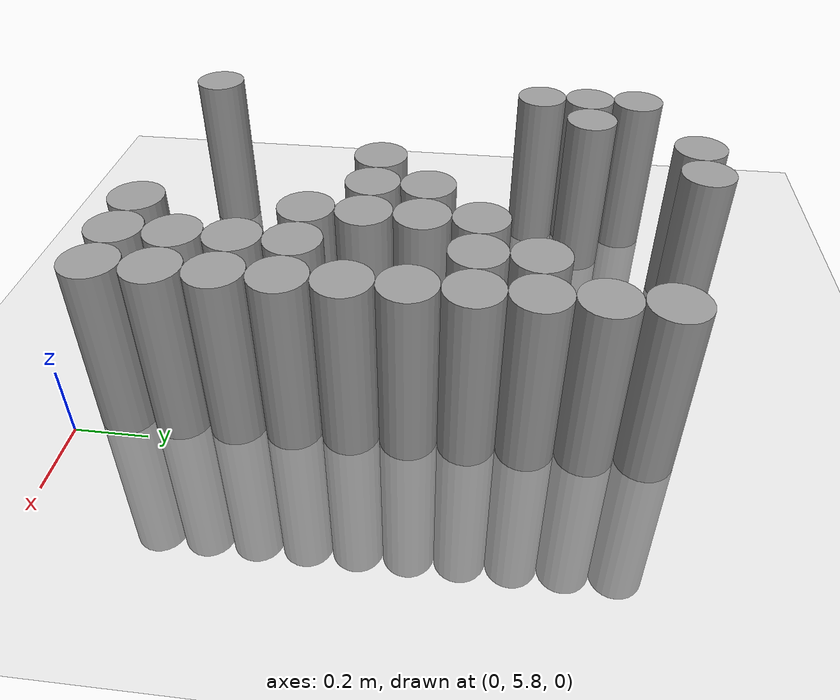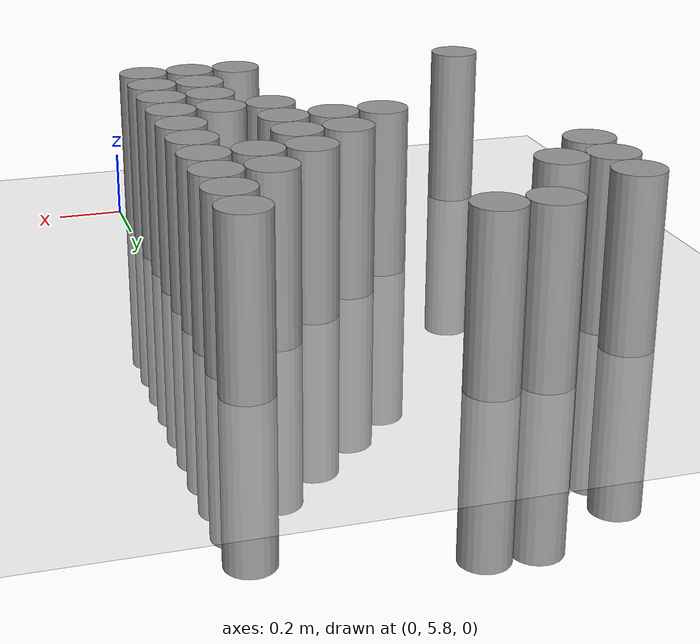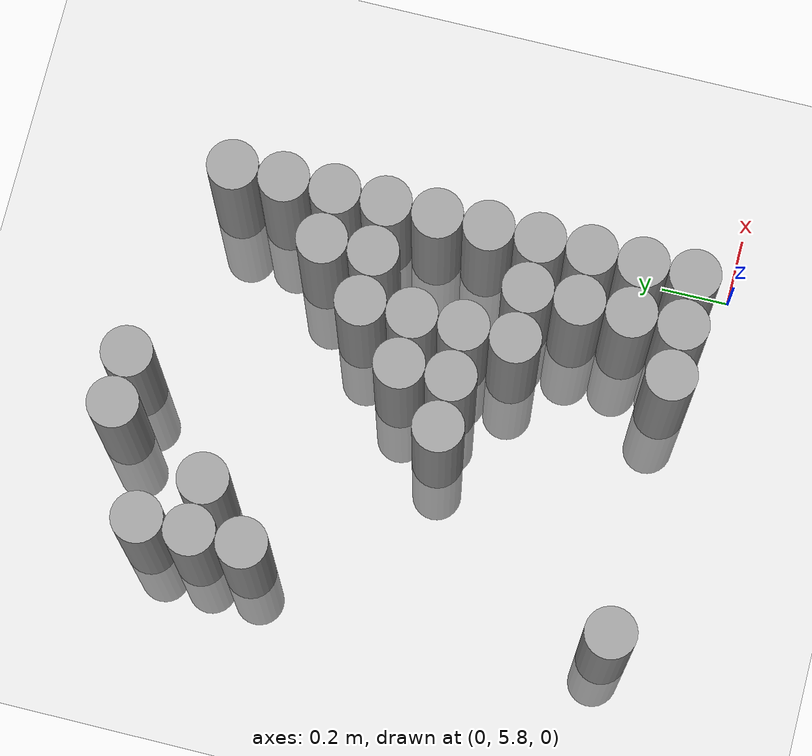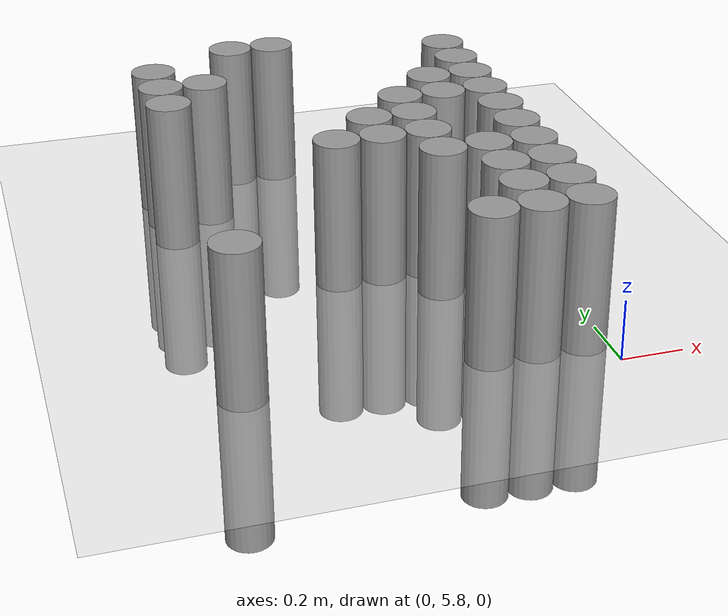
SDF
<sdf version="1.6">
 <world name="default">
  <model name="ground_plane">
   <static>1</static>
   <static>1</static>
   <link name="link">
    <collision name="collision">
     <geometry><plane><normal>0 0 1</normal><size>100 100</size></plane></geometry>
     <surface><friction><ode><mu>100</mu><mu2>50</mu2></ode></friction></surface>
    </collision>
    <visual name="visual">
     <cast_shadows>0</cast_shadows>
     <geometry><plane><normal>0 0 1</normal><size>100 100</size></plane></geometry>
     <material>
      <script><uri>file://media/materials/scripts/gazebo.material</uri><name>Gazebo/Grey</name></script>
     </material>
    </visual>
   </link>
  </model>
  <model name="unit_cylinder_176">
   <static>1</static>
   <pose>-1.125000 5.925000 0.000000 0.000000 0.000000 0.000000</pose>
   <link name="link">
    <inertial>
     <mass>1</mass>
     <inertia><ixx>0.145833</ixx><ixy>0</ixy><ixz>0</ixz><iyy>0.145833</iyy><iyz>0</iyz><izz>0.125</izz></inertia>
    </inertial>
    <collision name="collision">
     <geometry><cylinder><radius>0.075000</radius><length>1</length></cylinder></geometry>
    </collision>
    <visual name="visual">
     <geometry><cylinder><radius>0.075000</radius><length>1</length></cylinder></geometry>
     <material>
      <script><name>Gazebo/Grey</name><uri>file://media/materials/scripts/gazebo.material</uri></script>
     </material>
    </visual>
   </link>
  </model>
  <model name="unit_cylinder_177">
   <static>1</static>
   <pose>-1.125000 6.975000 0.000000 0.000000 0.000000 0.000000</pose>
   <link name="link">
    <inertial>
     <mass>1</mass>
     <inertia><ixx>0.145833</ixx><ixy>0</ixy><ixz>0</ixz><iyy>0.145833</iyy><iyz>0</iyz><izz>0.125</izz></inertia>
    </inertial>
    <collision name="collision">
     <geometry><cylinder><radius>0.075000</radius><length>1</length></cylinder></geometry>
    </collision>
    <visual name="visual">
     <geometry><cylinder><radius>0.075000</radius><length>1</length></cylinder></geometry>
     <material>
      <script><name>Gazebo/Grey</name><uri>file://media/materials/scripts/gazebo.material</uri></script>
     </material>
    </visual>
   </link>
  </model>
  <model name="unit_cylinder_178">
   <static>1</static>
   <pose>-1.125000 7.125000 0.000000 0.000000 0.000000 0.000000</pose>
   <link name="link">
    <inertial>
     <mass>1</mass>
     <inertia><ixx>0.145833</ixx><ixy>0</ixy><ixz>0</ixz><iyy>0.145833</iyy><iyz>0</iyz><izz>0.125</izz></inertia>
    </inertial>
    <collision name="collision">
     <geometry><cylinder><radius>0.075000</radius><length>1</length></cylinder></geometry>
    </collision>
    <visual name="visual">
     <geometry><cylinder><radius>0.075000</radius><length>1</length></cylinder></geometry>
     <material>
      <script><name>Gazebo/Grey</name><uri>file://media/materials/scripts/gazebo.material</uri></script>
     </material>
    </visual>
   </link>
  </model>
  <model name="unit_cylinder_179">
   <static>1</static>
   <pose>-1.125000 7.275000 0.000000 0.000000 0.000000 0.000000</pose>
   <link name="link">
    <inertial>
     <mass>1</mass>
     <inertia><ixx>0.145833</ixx><ixy>0</ixy><ixz>0</ixz><iyy>0.145833</iyy><iyz>0</iyz><izz>0.125</izz></inertia>
    </inertial>
    <collision name="collision">
     <geometry><cylinder><radius>0.075000</radius><length>1</length></cylinder></geometry>
    </collision>
    <visual name="visual">
     <geometry><cylinder><radius>0.075000</radius><length>1</length></cylinder></geometry>
     <material>
      <script><name>Gazebo/Grey</name><uri>file://media/materials/scripts/gazebo.material</uri></script>
     </material>
    </visual>
   </link>
  </model>
  <model name="unit_cylinder_182">
   <static>1</static>
   <pose>-0.975000 7.125000 0.000000 0.000000 0.000000 0.000000</pose>
   <link name="link">
    <inertial>
     <mass>1</mass>
     <inertia><ixx>0.145833</ixx><ixy>0</ixy><ixz>0</ixz><iyy>0.145833</iyy><iyz>0</iyz><izz>0.125</izz></inertia>
    </inertial>
    <collision name="collision">
     <geometry><cylinder><radius>0.075000</radius><length>1</length></cylinder></geometry>
    </collision>
    <visual name="visual">
     <geometry><cylinder><radius>0.075000</radius><length>1</length></cylinder></geometry>
     <material>
      <script><name>Gazebo/Grey</name><uri>file://media/materials/scripts/gazebo.material</uri></script>
     </material>
    </visual>
   </link>
  </model>
  <model name="unit_cylinder_187">
   <static>1</static>
   <pose>-0.825000 7.425000 0.000000 0.000000 0.000000 0.000000</pose>
   <link name="link">
    <inertial>
     <mass>1</mass>
     <inertia><ixx>0.145833</ixx><ixy>0</ixy><ixz>0</ixz><iyy>0.145833</iyy><iyz>0</iyz><izz>0.125</izz></inertia>
    </inertial>
    <collision name="collision">
     <geometry><cylinder><radius>0.075000</radius><length>1</length></cylinder></geometry>
    </collision>
    <visual name="visual">
     <geometry><cylinder><radius>0.075000</radius><length>1</length></cylinder></geometry>
     <material>
      <script><name>Gazebo/Grey</name><uri>file://media/materials/scripts/gazebo.material</uri></script>
     </material>
    </visual>
   </link>
  </model>
  <model name="unit_cylinder_192">
   <static>1</static>
   <pose>-0.675000 6.525000 0.000000 0.000000 0.000000 0.000000</pose>
   <link name="link">
    <inertial>
     <mass>1</mass>
     <inertia><ixx>0.145833</ixx><ixy>0</ixy><ixz>0</ixz><iyy>0.145833</iyy><iyz>0</iyz><izz>0.125</izz></inertia>
    </inertial>
    <collision name="collision">
     <geometry><cylinder><radius>0.075000</radius><length>1</length></cylinder></geometry>
    </collision>
    <visual name="visual">
     <geometry><cylinder><radius>0.075000</radius><length>1</length></cylinder></geometry>
     <material>
      <script><name>Gazebo/Grey</name><uri>file://media/materials/scripts/gazebo.material</uri></script>
     </material>
    </visual>
   </link>
  </model>
  <model name="unit_cylinder_193">
   <static>1</static>
   <pose>-0.675000 7.425000 0.000000 0.000000 0.000000 0.000000</pose>
   <link name="link">
    <inertial>
     <mass>1</mass>
     <inertia><ixx>0.145833</ixx><ixy>0</ixy><ixz>0</ixz><iyy>0.145833</iyy><iyz>0</iyz><izz>0.125</izz></inertia>
    </inertial>
    <collision name="collision">
     <geometry><cylinder><radius>0.075000</radius><length>1</length></cylinder></geometry>
    </collision>
    <visual name="visual">
     <geometry><cylinder><radius>0.075000</radius><length>1</length></cylinder></geometry>
     <material>
      <script><name>Gazebo/Grey</name><uri>file://media/materials/scripts/gazebo.material</uri></script>
     </material>
    </visual>
   </link>
  </model>
  <model name="unit_cylinder_198">
   <static>1</static>
   <pose>-0.525000 6.525000 0.000000 0.000000 0.000000 0.000000</pose>
   <link name="link">
    <inertial>
     <mass>1</mass>
     <inertia><ixx>0.145833</ixx><ixy>0</ixy><ixz>0</ixz><iyy>0.145833</iyy><iyz>0</iyz><izz>0.125</izz></inertia>
    </inertial>
    <collision name="collision">
     <geometry><cylinder><radius>0.075000</radius><length>1</length></cylinder></geometry>
    </collision>
    <visual name="visual">
     <geometry><cylinder><radius>0.075000</radius><length>1</length></cylinder></geometry>
     <material>
      <script><name>Gazebo/Grey</name><uri>file://media/materials/scripts/gazebo.material</uri></script>
     </material>
    </visual>
   </link>
  </model>
  <model name="unit_cylinder_199">
   <static>1</static>
   <pose>-0.525000 6.675000 0.000000 0.000000 0.000000 0.000000</pose>
   <link name="link">
    <inertial>
     <mass>1</mass>
     <inertia><ixx>0.145833</ixx><ixy>0</ixy><ixz>0</ixz><iyy>0.145833</iyy><iyz>0</iyz><izz>0.125</izz></inertia>
    </inertial>
    <collision name="collision">
     <geometry><cylinder><radius>0.075000</radius><length>1</length></cylinder></geometry>
    </collision>
    <visual name="visual">
     <geometry><cylinder><radius>0.075000</radius><length>1</length></cylinder></geometry>
     <material>
      <script><name>Gazebo/Grey</name><uri>file://media/materials/scripts/gazebo.material</uri></script>
     </material>
    </visual>
   </link>
  </model>
  <model name="unit_cylinder_204">
   <static>1</static>
   <pose>-0.375000 5.925000 0.000000 0.000000 0.000000 0.000000</pose>
   <link name="link">
    <inertial>
     <mass>1</mass>
     <inertia><ixx>0.145833</ixx><ixy>0</ixy><ixz>0</ixz><iyy>0.145833</iyy><iyz>0</iyz><izz>0.125</izz></inertia>
    </inertial>
    <collision name="collision">
     <geometry><cylinder><radius>0.075000</radius><length>1</length></cylinder></geometry>
    </collision>
    <visual name="visual">
     <geometry><cylinder><radius>0.075000</radius><length>1</length></cylinder></geometry>
     <material>
      <script><name>Gazebo/Grey</name><uri>file://media/materials/scripts/gazebo.material</uri></script>
     </material>
    </visual>
   </link>
  </model>
  <model name="unit_cylinder_205">
   <static>1</static>
   <pose>-0.375000 6.375000 0.000000 0.000000 0.000000 0.000000</pose>
   <link name="link">
    <inertial>
     <mass>1</mass>
     <inertia><ixx>0.145833</ixx><ixy>0</ixy><ixz>0</ixz><iyy>0.145833</iyy><iyz>0</iyz><izz>0.125</izz></inertia>
    </inertial>
    <collision name="collision">
     <geometry><cylinder><radius>0.075000</radius><length>1</length></cylinder></geometry>
    </collision>
    <visual name="visual">
     <geometry><cylinder><radius>0.075000</radius><length>1</length></cylinder></geometry>
     <material>
      <script><name>Gazebo/Grey</name><uri>file://media/materials/scripts/gazebo.material</uri></script>
     </material>
    </visual>
   </link>
  </model>
  <model name="unit_cylinder_206">
   <static>1</static>
   <pose>-0.375000 6.525000 0.000000 0.000000 0.000000 0.000000</pose>
   <link name="link">
    <inertial>
     <mass>1</mass>
     <inertia><ixx>0.145833</ixx><ixy>0</ixy><ixz>0</ixz><iyy>0.145833</iyy><iyz>0</iyz><izz>0.125</izz></inertia>
    </inertial>
    <collision name="collision">
     <geometry><cylinder><radius>0.075000</radius><length>1</length></cylinder></geometry>
    </collision>
    <visual name="visual">
     <geometry><cylinder><radius>0.075000</radius><length>1</length></cylinder></geometry>
     <material>
      <script><name>Gazebo/Grey</name><uri>file://media/materials/scripts/gazebo.material</uri></script>
     </material>
    </visual>
   </link>
  </model>
  <model name="unit_cylinder_207">
   <static>1</static>
   <pose>-0.375000 6.675000 0.000000 0.000000 0.000000 0.000000</pose>
   <link name="link">
    <inertial>
     <mass>1</mass>
     <inertia><ixx>0.145833</ixx><ixy>0</ixy><ixz>0</ixz><iyy>0.145833</iyy><iyz>0</iyz><izz>0.125</izz></inertia>
    </inertial>
    <collision name="collision">
     <geometry><cylinder><radius>0.075000</radius><length>1</length></cylinder></geometry>
    </collision>
    <visual name="visual">
     <geometry><cylinder><radius>0.075000</radius><length>1</length></cylinder></geometry>
     <material>
      <script><name>Gazebo/Grey</name><uri>file://media/materials/scripts/gazebo.material</uri></script>
     </material>
    </visual>
   </link>
  </model>
  <model name="unit_cylinder_208">
   <static>1</static>
   <pose>-0.375000 6.825000 0.000000 0.000000 0.000000 0.000000</pose>
   <link name="link">
    <inertial>
     <mass>1</mass>
     <inertia><ixx>0.145833</ixx><ixy>0</ixy><ixz>0</ixz><iyy>0.145833</iyy><iyz>0</iyz><izz>0.125</izz></inertia>
    </inertial>
    <collision name="collision">
     <geometry><cylinder><radius>0.075000</radius><length>1</length></cylinder></geometry>
    </collision>
    <visual name="visual">
     <geometry><cylinder><radius>0.075000</radius><length>1</length></cylinder></geometry>
     <material>
      <script><name>Gazebo/Grey</name><uri>file://media/materials/scripts/gazebo.material</uri></script>
     </material>
    </visual>
   </link>
  </model>
  <model name="unit_cylinder_213">
   <static>1</static>
   <pose>-0.225000 5.925000 0.000000 0.000000 0.000000 0.000000</pose>
   <link name="link">
    <inertial>
     <mass>1</mass>
     <inertia><ixx>0.145833</ixx><ixy>0</ixy><ixz>0</ixz><iyy>0.145833</iyy><iyz>0</iyz><izz>0.125</izz></inertia>
    </inertial>
    <collision name="collision">
     <geometry><cylinder><radius>0.075000</radius><length>1</length></cylinder></geometry>
    </collision>
    <visual name="visual">
     <geometry><cylinder><radius>0.075000</radius><length>1</length></cylinder></geometry>
     <material>
      <script><name>Gazebo/Grey</name><uri>file://media/materials/scripts/gazebo.material</uri></script>
     </material>
    </visual>
   </link>
  </model>
  <model name="unit_cylinder_214">
   <static>1</static>
   <pose>-0.225000 6.075000 0.000000 0.000000 0.000000 0.000000</pose>
   <link name="link">
    <inertial>
     <mass>1</mass>
     <inertia><ixx>0.145833</ixx><ixy>0</ixy><ixz>0</ixz><iyy>0.145833</iyy><iyz>0</iyz><izz>0.125</izz></inertia>
    </inertial>
    <collision name="collision">
     <geometry><cylinder><radius>0.075000</radius><length>1</length></cylinder></geometry>
    </collision>
    <visual name="visual">
     <geometry><cylinder><radius>0.075000</radius><length>1</length></cylinder></geometry>
     <material>
      <script><name>Gazebo/Grey</name><uri>file://media/materials/scripts/gazebo.material</uri></script>
     </material>
    </visual>
   </link>
  </model>
  <model name="unit_cylinder_215">
   <static>1</static>
   <pose>-0.225000 6.225000 0.000000 0.000000 0.000000 0.000000</pose>
   <link name="link">
    <inertial>
     <mass>1</mass>
     <inertia><ixx>0.145833</ixx><ixy>0</ixy><ixz>0</ixz><iyy>0.145833</iyy><iyz>0</iyz><izz>0.125</izz></inertia>
    </inertial>
    <collision name="collision">
     <geometry><cylinder><radius>0.075000</radius><length>1</length></cylinder></geometry>
    </collision>
    <visual name="visual">
     <geometry><cylinder><radius>0.075000</radius><length>1</length></cylinder></geometry>
     <material>
      <script><name>Gazebo/Grey</name><uri>file://media/materials/scripts/gazebo.material</uri></script>
     </material>
    </visual>
   </link>
  </model>
  <model name="unit_cylinder_216">
   <static>1</static>
   <pose>-0.225000 6.375000 0.000000 0.000000 0.000000 0.000000</pose>
   <link name="link">
    <inertial>
     <mass>1</mass>
     <inertia><ixx>0.145833</ixx><ixy>0</ixy><ixz>0</ixz><iyy>0.145833</iyy><iyz>0</iyz><izz>0.125</izz></inertia>
    </inertial>
    <collision name="collision">
     <geometry><cylinder><radius>0.075000</radius><length>1</length></cylinder></geometry>
    </collision>
    <visual name="visual">
     <geometry><cylinder><radius>0.075000</radius><length>1</length></cylinder></geometry>
     <material>
      <script><name>Gazebo/Grey</name><uri>file://media/materials/scripts/gazebo.material</uri></script>
     </material>
    </visual>
   </link>
  </model>
  <model name="unit_cylinder_217">
   <static>1</static>
   <pose>-0.225000 6.825000 0.000000 0.000000 0.000000 0.000000</pose>
   <link name="link">
    <inertial>
     <mass>1</mass>
     <inertia><ixx>0.145833</ixx><ixy>0</ixy><ixz>0</ixz><iyy>0.145833</iyy><iyz>0</iyz><izz>0.125</izz></inertia>
    </inertial>
    <collision name="collision">
     <geometry><cylinder><radius>0.075000</radius><length>1</length></cylinder></geometry>
    </collision>
    <visual name="visual">
     <geometry><cylinder><radius>0.075000</radius><length>1</length></cylinder></geometry>
     <material>
      <script><name>Gazebo/Grey</name><uri>file://media/materials/scripts/gazebo.material</uri></script>
     </material>
    </visual>
   </link>
  </model>
  <model name="unit_cylinder_218">
   <static>1</static>
   <pose>-0.225000 6.975000 0.000000 0.000000 0.000000 0.000000</pose>
   <link name="link">
    <inertial>
     <mass>1</mass>
     <inertia><ixx>0.145833</ixx><ixy>0</ixy><ixz>0</ixz><iyy>0.145833</iyy><iyz>0</iyz><izz>0.125</izz></inertia>
    </inertial>
    <collision name="collision">
     <geometry><cylinder><radius>0.075000</radius><length>1</length></cylinder></geometry>
    </collision>
    <visual name="visual">
     <geometry><cylinder><radius>0.075000</radius><length>1</length></cylinder></geometry>
     <material>
      <script><name>Gazebo/Grey</name><uri>file://media/materials/scripts/gazebo.material</uri></script>
     </material>
    </visual>
   </link>
  </model>
  <model name="unit_cylinder_227">
   <static>1</static>
   <pose>-0.075000 5.925000 0.000000 0.000000 0.000000 0.000000</pose>
   <link name="link">
    <inertial>
     <mass>1</mass>
     <inertia><ixx>0.145833</ixx><ixy>0</ixy><ixz>0</ixz><iyy>0.145833</iyy><iyz>0</iyz><izz>0.125</izz></inertia>
    </inertial>
    <collision name="collision">
     <geometry><cylinder><radius>0.075000</radius><length>1</length></cylinder></geometry>
    </collision>
    <visual name="visual">
     <geometry><cylinder><radius>0.075000</radius><length>1</length></cylinder></geometry>
     <material>
      <script><name>Gazebo/Grey</name><uri>file://media/materials/scripts/gazebo.material</uri></script>
     </material>
    </visual>
   </link>
  </model>
  <model name="unit_cylinder_228">
   <static>1</static>
   <pose>-0.075000 6.075000 0.000000 0.000000 0.000000 0.000000</pose>
   <link name="link">
    <inertial>
     <mass>1</mass>
     <inertia><ixx>0.145833</ixx><ixy>0</ixy><ixz>0</ixz><iyy>0.145833</iyy><iyz>0</iyz><izz>0.125</izz></inertia>
    </inertial>
    <collision name="collision">
     <geometry><cylinder><radius>0.075000</radius><length>1</length></cylinder></geometry>
    </collision>
    <visual name="visual">
     <geometry><cylinder><radius>0.075000</radius><length>1</length></cylinder></geometry>
     <material>
      <script><name>Gazebo/Grey</name><uri>file://media/materials/scripts/gazebo.material</uri></script>
     </material>
    </visual>
   </link>
  </model>
  <model name="unit_cylinder_229">
   <static>1</static>
   <pose>-0.075000 6.225000 0.000000 0.000000 0.000000 0.000000</pose>
   <link name="link">
    <inertial>
     <mass>1</mass>
     <inertia><ixx>0.145833</ixx><ixy>0</ixy><ixz>0</ixz><iyy>0.145833</iyy><iyz>0</iyz><izz>0.125</izz></inertia>
    </inertial>
    <collision name="collision">
     <geometry><cylinder><radius>0.075000</radius><length>1</length></cylinder></geometry>
    </collision>
    <visual name="visual">
     <geometry><cylinder><radius>0.075000</radius><length>1</length></cylinder></geometry>
     <material>
      <script><name>Gazebo/Grey</name><uri>file://media/materials/scripts/gazebo.material</uri></script>
     </material>
    </visual>
   </link>
  </model>
  <model name="unit_cylinder_230">
   <static>1</static>
   <pose>-0.075000 6.375000 0.000000 0.000000 0.000000 0.000000</pose>
   <link name="link">
    <inertial>
     <mass>1</mass>
     <inertia><ixx>0.145833</ixx><ixy>0</ixy><ixz>0</ixz><iyy>0.145833</iyy><iyz>0</iyz><izz>0.125</izz></inertia>
    </inertial>
    <collision name="collision">
     <geometry><cylinder><radius>0.075000</radius><length>1</length></cylinder></geometry>
    </collision>
    <visual name="visual">
     <geometry><cylinder><radius>0.075000</radius><length>1</length></cylinder></geometry>
     <material>
      <script><name>Gazebo/Grey</name><uri>file://media/materials/scripts/gazebo.material</uri></script>
     </material>
    </visual>
   </link>
  </model>
  <model name="unit_cylinder_231">
   <static>1</static>
   <pose>-0.075000 6.525000 0.000000 0.000000 0.000000 0.000000</pose>
   <link name="link">
    <inertial>
     <mass>1</mass>
     <inertia><ixx>0.145833</ixx><ixy>0</ixy><ixz>0</ixz><iyy>0.145833</iyy><iyz>0</iyz><izz>0.125</izz></inertia>
    </inertial>
    <collision name="collision">
     <geometry><cylinder><radius>0.075000</radius><length>1</length></cylinder></geometry>
    </collision>
    <visual name="visual">
     <geometry><cylinder><radius>0.075000</radius><length>1</length></cylinder></geometry>
     <material>
      <script><name>Gazebo/Grey</name><uri>file://media/materials/scripts/gazebo.material</uri></script>
     </material>
    </visual>
   </link>
  </model>
  <model name="unit_cylinder_232">
   <static>1</static>
   <pose>-0.075000 6.675000 0.000000 0.000000 0.000000 0.000000</pose>
   <link name="link">
    <inertial>
     <mass>1</mass>
     <inertia><ixx>0.145833</ixx><ixy>0</ixy><ixz>0</ixz><iyy>0.145833</iyy><iyz>0</iyz><izz>0.125</izz></inertia>
    </inertial>
    <collision name="collision">
     <geometry><cylinder><radius>0.075000</radius><length>1</length></cylinder></geometry>
    </collision>
    <visual name="visual">
     <geometry><cylinder><radius>0.075000</radius><length>1</length></cylinder></geometry>
     <material>
      <script><name>Gazebo/Grey</name><uri>file://media/materials/scripts/gazebo.material</uri></script>
     </material>
    </visual>
   </link>
  </model>
  <model name="unit_cylinder_233">
   <static>1</static>
   <pose>-0.075000 6.825000 0.000000 0.000000 0.000000 0.000000</pose>
   <link name="link">
    <inertial>
     <mass>1</mass>
     <inertia><ixx>0.145833</ixx><ixy>0</ixy><ixz>0</ixz><iyy>0.145833</iyy><iyz>0</iyz><izz>0.125</izz></inertia>
    </inertial>
    <collision name="collision">
     <geometry><cylinder><radius>0.075000</radius><length>1</length></cylinder></geometry>
    </collision>
    <visual name="visual">
     <geometry><cylinder><radius>0.075000</radius><length>1</length></cylinder></geometry>
     <material>
      <script><name>Gazebo/Grey</name><uri>file://media/materials/scripts/gazebo.material</uri></script>
     </material>
    </visual>
   </link>
  </model>
  <model name="unit_cylinder_234">
   <static>1</static>
   <pose>-0.075000 6.975000 0.000000 0.000000 0.000000 0.000000</pose>
   <link name="link">
    <inertial>
     <mass>1</mass>
     <inertia><ixx>0.145833</ixx><ixy>0</ixy><ixz>0</ixz><iyy>0.145833</iyy><iyz>0</iyz><izz>0.125</izz></inertia>
    </inertial>
    <collision name="collision">
     <geometry><cylinder><radius>0.075000</radius><length>1</length></cylinder></geometry>
    </collision>
    <visual name="visual">
     <geometry><cylinder><radius>0.075000</radius><length>1</length></cylinder></geometry>
     <material>
      <script><name>Gazebo/Grey</name><uri>file://media/materials/scripts/gazebo.material</uri></script>
     </material>
    </visual>
   </link>
  </model>
  <model name="unit_cylinder_235">
   <static>1</static>
   <pose>-0.075000 7.125000 0.000000 0.000000 0.000000 0.000000</pose>
   <link name="link">
    <inertial>
     <mass>1</mass>
     <inertia><ixx>0.145833</ixx><ixy>0</ixy><ixz>0</ixz><iyy>0.145833</iyy><iyz>0</iyz><izz>0.125</izz></inertia>
    </inertial>
    <collision name="collision">
     <geometry><cylinder><radius>0.075000</radius><length>1</length></cylinder></geometry>
    </collision>
    <visual name="visual">
     <geometry><cylinder><radius>0.075000</radius><length>1</length></cylinder></geometry>
     <material>
      <script><name>Gazebo/Grey</name><uri>file://media/materials/scripts/gazebo.material</uri></script>
     </material>
    </visual>
   </link>
  </model>
  <model name="unit_cylinder_236">
   <static>1</static>
   <pose>-0.075000 7.275000 0.000000 0.000000 0.000000 0.000000</pose>
   <link name="link">
    <inertial>
     <mass>1</mass>
     <inertia><ixx>0.145833</ixx><ixy>0</ixy><ixz>0</ixz><iyy>0.145833</iyy><iyz>0</iyz><izz>0.125</izz></inertia>
    </inertial>
    <collision name="collision">
     <geometry><cylinder><radius>0.075000</radius><length>1</length></cylinder></geometry>
    </collision>
    <visual name="visual">
     <geometry><cylinder><radius>0.075000</radius><length>1</length></cylinder></geometry>
     <material>
      <script><name>Gazebo/Grey</name><uri>file://media/materials/scripts/gazebo.material</uri></script>
     </material>
    </visual>
   </link>
  </model>
 </world>
</sdf>
